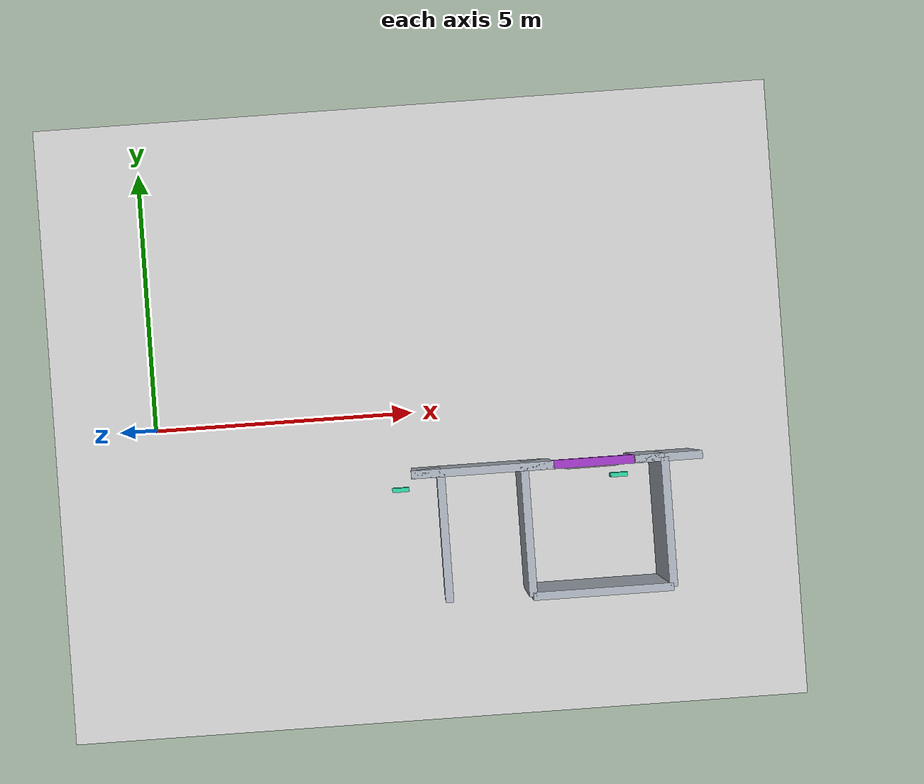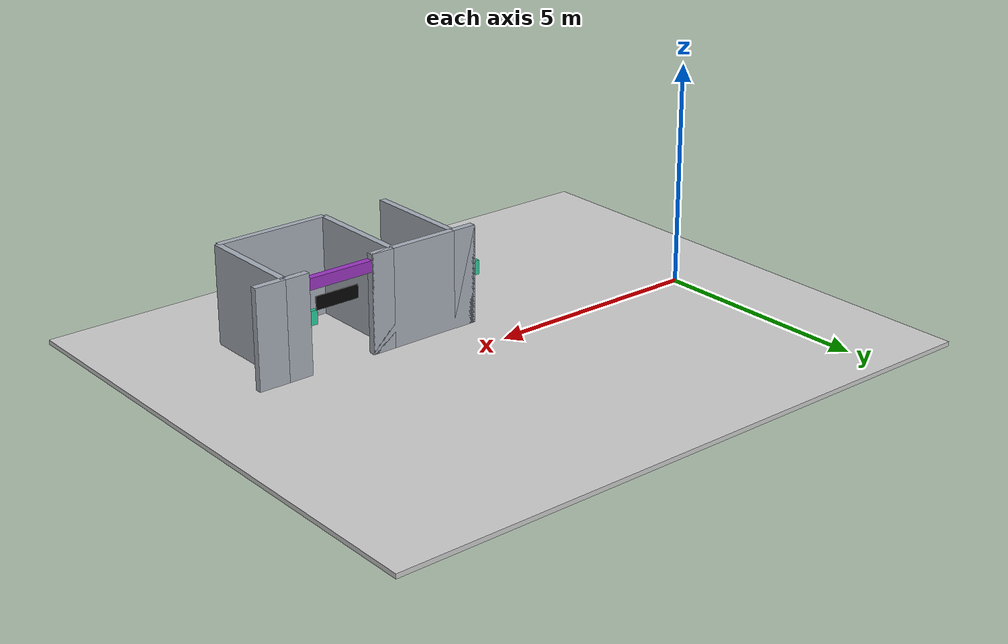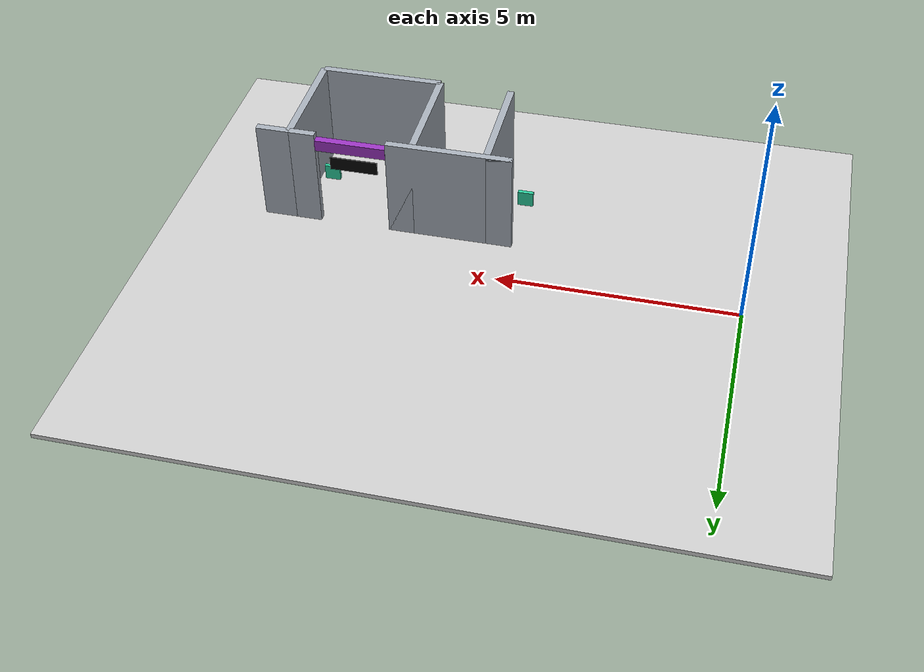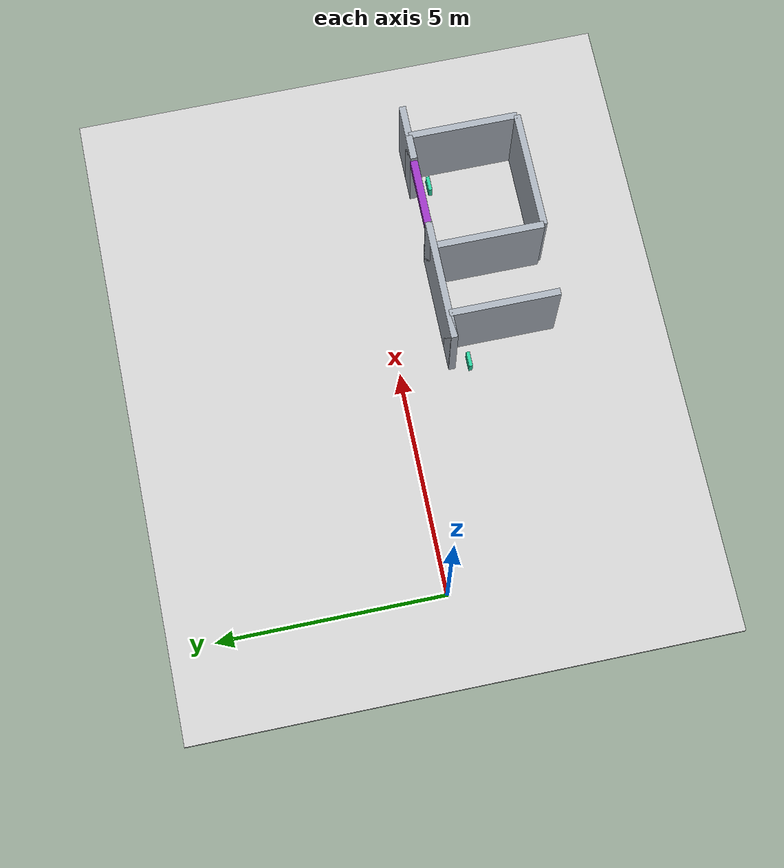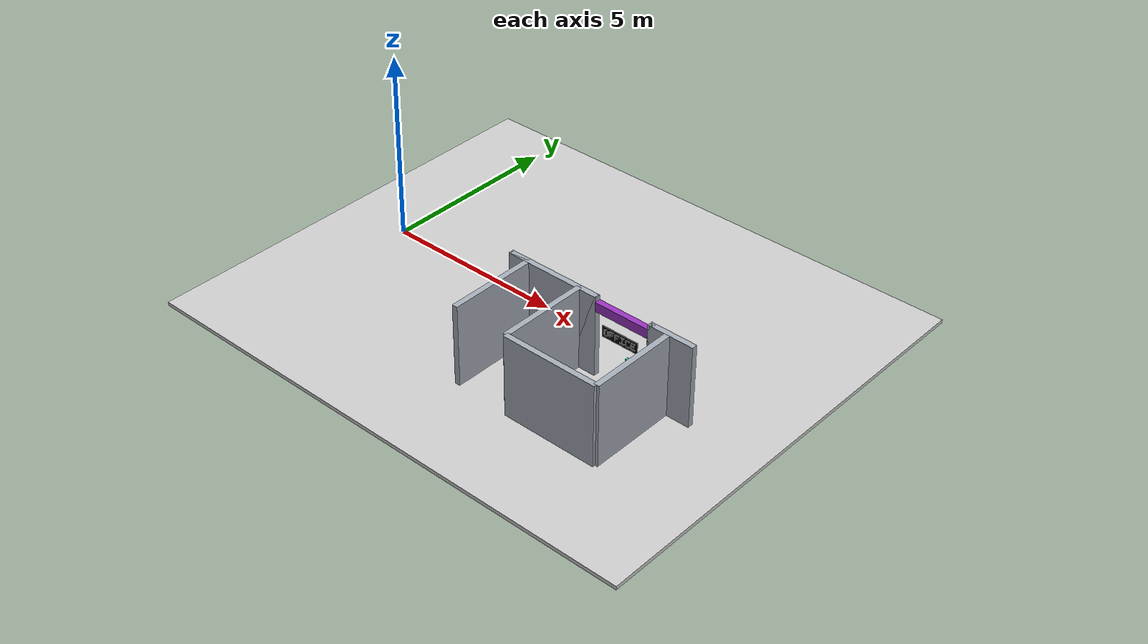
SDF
<sdf version="1.9">
 <world name="default">
  <model name="ground_plane">
   <static>true</static>
   <pose>5.15 0 -0.05 0 0 0</pose>
   <link name="body">
    <collision name="collision"><geometry><box><size>14.3 12 0.1</size></box></geometry></collision>
    <visual name="visual">
     <geometry><box><size>14.3 12 0.1</size></box></geometry>
     <material><ambient>0.8 0.8 0.8 1</ambient><diffuse>0.8 0.8 0.8 1</diffuse></material>
    </visual>
   </link>
  </model>
  <model name="room_-1_1_1">
   <static>true</static>
   <pose>5.45 -2.3499999999999996 1.1 0 0 0</pose>
   <link name="body">
    <collision name="collision"><geometry><box><size>0.15 2.4 2.2</size></box></geometry></collision>
    <visual name="visual">
     <geometry><box><size>0.15 2.4 2.2</size></box></geometry>
     <material><ambient>0.65 0.68 0.72 1</ambient><diffuse>0.65 0.68 0.72 1</diffuse></material>
    </visual>
   </link>
  </model>
  <model name="jamb_-1_1_1">
   <static>true</static>
   <pose>5.175000000000001 -1.15 1.1 0 0 0</pose>
   <link name="body">
    <collision name="collision"><geometry><box><size>0.55 0.15 2.2</size></box></geometry></collision>
    <visual name="visual">
     <geometry><box><size>0.55 0.15 2.2</size></box></geometry>
     <material><ambient>0.65 0.68 0.72 1</ambient><diffuse>0.65 0.68 0.72 1</diffuse></material>
    </visual>
   </link>
  </model>
  <model name="hall_-1_2">
   <static>true</static>
   <pose>6.2250000000000005 -1.15 1.1 0 0 0</pose>
   <link name="body">
    <collision name="collision">
     <geometry><box><size>2.6500000000000004 0.15 2.2</size></box></geometry>
    </collision>
    <visual name="visual">
     <geometry><box><size>2.6500000000000004 0.15 2.2</size></box></geometry>
     <material><ambient>0.65 0.68 0.72 1</ambient><diffuse>0.65 0.68 0.72 1</diffuse></material>
    </visual>
   </link>
  </model>
  <model name="room_-1_2_-1">
   <static>true</static>
   <pose>7.000000000000001 -2.3499999999999996 1.1 0 0 0</pose>
   <link name="body">
    <collision name="collision"><geometry><box><size>0.15 2.4 2.2</size></box></geometry></collision>
    <visual name="visual">
     <geometry><box><size>0.15 2.4 2.2</size></box></geometry>
     <material><ambient>0.65 0.68 0.72 1</ambient><diffuse>0.65 0.68 0.72 1</diffuse></material>
    </visual>
   </link>
  </model>
  <model name="room_-1_2_1">
   <static>true</static>
   <pose>9.600000000000001 -2.3499999999999996 1.1 0 0 0</pose>
   <link name="body">
    <collision name="collision"><geometry><box><size>0.15 2.4 2.2</size></box></geometry></collision>
    <visual name="visual">
     <geometry><box><size>0.15 2.4 2.2</size></box></geometry>
     <material><ambient>0.65 0.68 0.72 1</ambient><diffuse>0.65 0.68 0.72 1</diffuse></material>
    </visual>
   </link>
  </model>
  <model name="room_end_-1_2">
   <static>true</static>
   <pose>8.3 -3.55 1.1 0 0 0</pose>
   <link name="body">
    <collision name="collision"><geometry><box><size>2.6 0.15 2.2</size></box></geometry></collision>
    <visual name="visual">
     <geometry><box><size>2.6 0.15 2.2</size></box></geometry>
     <material><ambient>0.65 0.68 0.72 1</ambient><diffuse>0.65 0.68 0.72 1</diffuse></material>
    </visual>
   </link>
  </model>
  <model name="jamb_-1_2_-1">
   <static>true</static>
   <pose>7.275 -1.15 1.1 0 0 0</pose>
   <link name="body">
    <collision name="collision"><geometry><box><size>0.55 0.15 2.2</size></box></geometry></collision>
    <visual name="visual">
     <geometry><box><size>0.55 0.15 2.2</size></box></geometry>
     <material><ambient>0.65 0.68 0.72 1</ambient><diffuse>0.65 0.68 0.72 1</diffuse></material>
    </visual>
   </link>
  </model>
  <model name="jamb_-1_2_1">
   <static>true</static>
   <pose>9.325000000000001 -1.15 1.1 0 0 0</pose>
   <link name="body">
    <collision name="collision"><geometry><box><size>0.55 0.15 2.2</size></box></geometry></collision>
    <visual name="visual">
     <geometry><box><size>0.55 0.15 2.2</size></box></geometry>
     <material><ambient>0.65 0.68 0.72 1</ambient><diffuse>0.65 0.68 0.72 1</diffuse></material>
    </visual>
   </link>
  </model>
  <model name="hall_end_-1">
   <static>true</static>
   <pose>9.675 -1.15 1.1 0 0 0</pose>
   <link name="body">
    <collision name="collision"><geometry><box><size>1.25 0.15 2.2</size></box></geometry></collision>
    <visual name="visual">
     <geometry><box><size>1.25 0.15 2.2</size></box></geometry>
     <material><ambient>0.65 0.68 0.72 1</ambient><diffuse>0.65 0.68 0.72 1</diffuse></material>
    </visual>
   </link>
  </model>
  <model name="r3geo_base_r009_right_1_entrance_sign">
   <static>true</static>
   <pose>4.680000000000001 -1.45 1.05 0 0 0</pose>
   <link name="body">
    <visual name="visual">
     <geometry><box><size>0.32 0.08 0.32</size></box></geometry>
     <material><ambient>0.16 0.8 0.61 1</ambient><diffuse>0.16 0.8 0.61 1</diffuse></material>
    </visual>
   </link>
  </model>
  <model name="r3geo_base_r009_right_2_lintel">
   <static>true</static>
   <pose>8.3 -1.15 1.95 0 0 0</pose>
   <link name="body">
    <collision name="collision"><geometry><box><size>1.5 0.16 0.25</size></box></geometry></collision>
    <visual name="visual">
     <geometry><box><size>1.5 0.16 0.25</size></box></geometry>
     <material><ambient>0.6 0.2 0.75 1</ambient><diffuse>0.6 0.2 0.75 1</diffuse></material>
    </visual>
   </link>
  </model>
  <model name="r3geo_base_r009_right_2_entrance_sign">
   <static>true</static>
   <pose>8.83 -1.45 1.05 0 0 0</pose>
   <link name="body">
    <visual name="visual">
     <geometry><box><size>0.32 0.08 0.32</size></box></geometry>
     <material><ambient>0.16 0.8 0.61 1</ambient><diffuse>0.16 0.8 0.61 1</diffuse></material>
    </visual>
   </link>
  </model>
  <model name="readable_r3geo_base_r009_right_2_entrance_room">
   <static>true</static>
   <pose>8.3 -1.25 1.43 0 0 0</pose>
   <link name="lettering">
    <visual name="backboard">
     <geometry><box><size>1.02 0.018 0.3</size></box></geometry>
     <material>
      <ambient>.015 .015 .015 1</ambient>
      <diffuse>.015 .015 .015 1</diffuse>
      <emissive>.015 .015 .015 1</emissive>
     </material>
     <cast_shadows>false</cast_shadows>
    </visual>
    <visual name="letter_0_0_1">
     <pose>-0.416 -0.014 0.078 0 0 0</pose>
     <geometry><box><size>0.024439999999999996 0.008 0.024439999999999996</size></box></geometry>
     <material>
      <ambient>.96 .96 .96 1</ambient>
      <diffuse>.96 .96 .96 1</diffuse>
      <emissive>.96 .96 .96 1</emissive>
     </material>
     <cast_shadows>false</cast_shadows>
    </visual>
    <visual name="letter_0_0_2">
     <pose>-0.39 -0.014 0.078 0 0 0</pose>
     <geometry><box><size>0.024439999999999996 0.008 0.024439999999999996</size></box></geometry>
     <material>
      <ambient>.96 .96 .96 1</ambient>
      <diffuse>.96 .96 .96 1</diffuse>
      <emissive>.96 .96 .96 1</emissive>
     </material>
     <cast_shadows>false</cast_shadows>
    </visual>
    <visual name="letter_0_0_3">
     <pose>-0.364 -0.014 0.078 0 0 0</pose>
     <geometry><box><size>0.024439999999999996 0.008 0.024439999999999996</size></box></geometry>
     <material>
      <ambient>.96 .96 .96 1</ambient>
      <diffuse>.96 .96 .96 1</diffuse>
      <emissive>.96 .96 .96 1</emissive>
     </material>
     <cast_shadows>false</cast_shadows>
    </visual>
    <visual name="letter_0_1_0">
     <pose>-0.442 -0.014 0.052 0 0 0</pose>
     <geometry><box><size>0.024439999999999996 0.008 0.024439999999999996</size></box></geometry>
     <material>
      <ambient>.96 .96 .96 1</ambient>
      <diffuse>.96 .96 .96 1</diffuse>
      <emissive>.96 .96 .96 1</emissive>
     </material>
     <cast_shadows>false</cast_shadows>
    </visual>
    <visual name="letter_0_1_4">
     <pose>-0.338 -0.014 0.052 0 0 0</pose>
     <geometry><box><size>0.024439999999999996 0.008 0.024439999999999996</size></box></geometry>
     <material>
      <ambient>.96 .96 .96 1</ambient>
      <diffuse>.96 .96 .96 1</diffuse>
      <emissive>.96 .96 .96 1</emissive>
     </material>
     <cast_shadows>false</cast_shadows>
    </visual>
    <visual name="letter_0_2_0">
     <pose>-0.442 -0.014 0.026 0 0 0</pose>
     <geometry><box><size>0.024439999999999996 0.008 0.024439999999999996</size></box></geometry>
     <material>
      <ambient>.96 .96 .96 1</ambient>
      <diffuse>.96 .96 .96 1</diffuse>
      <emissive>.96 .96 .96 1</emissive>
     </material>
     <cast_shadows>false</cast_shadows>
    </visual>
    <visual name="letter_0_2_4">
     <pose>-0.338 -0.014 0.026 0 0 0</pose>
     <geometry><box><size>0.024439999999999996 0.008 0.024439999999999996</size></box></geometry>
     <material>
      <ambient>.96 .96 .96 1</ambient>
      <diffuse>.96 .96 .96 1</diffuse>
      <emissive>.96 .96 .96 1</emissive>
     </material>
     <cast_shadows>false</cast_shadows>
    </visual>
    <visual name="letter_0_3_0">
     <pose>-0.442 -0.014 0 0 0 0</pose>
     <geometry><box><size>0.024439999999999996 0.008 0.024439999999999996</size></box></geometry>
     <material>
      <ambient>.96 .96 .96 1</ambient>
      <diffuse>.96 .96 .96 1</diffuse>
      <emissive>.96 .96 .96 1</emissive>
     </material>
     <cast_shadows>false</cast_shadows>
    </visual>
    <visual name="letter_0_3_4">
     <pose>-0.338 -0.014 0 0 0 0</pose>
     <geometry><box><size>0.024439999999999996 0.008 0.024439999999999996</size></box></geometry>
     <material>
      <ambient>.96 .96 .96 1</ambient>
      <diffuse>.96 .96 .96 1</diffuse>
      <emissive>.96 .96 .96 1</emissive>
     </material>
     <cast_shadows>false</cast_shadows>
    </visual>
    <visual name="letter_0_4_0">
     <pose>-0.442 -0.014 -0.026 0 0 0</pose>
     <geometry><box><size>0.024439999999999996 0.008 0.024439999999999996</size></box></geometry>
     <material>
      <ambient>.96 .96 .96 1</ambient>
      <diffuse>.96 .96 .96 1</diffuse>
      <emissive>.96 .96 .96 1</emissive>
     </material>
     <cast_shadows>false</cast_shadows>
    </visual>
    <visual name="letter_0_4_4">
     <pose>-0.338 -0.014 -0.026 0 0 0</pose>
     <geometry><box><size>0.024439999999999996 0.008 0.024439999999999996</size></box></geometry>
     <material>
      <ambient>.96 .96 .96 1</ambient>
      <diffuse>.96 .96 .96 1</diffuse>
      <emissive>.96 .96 .96 1</emissive>
     </material>
     <cast_shadows>false</cast_shadows>
    </visual>
    <visual name="letter_0_5_0">
     <pose>-0.442 -0.014 -0.052 0 0 0</pose>
     <geometry><box><size>0.024439999999999996 0.008 0.024439999999999996</size></box></geometry>
     <material>
      <ambient>.96 .96 .96 1</ambient>
      <diffuse>.96 .96 .96 1</diffuse>
      <emissive>.96 .96 .96 1</emissive>
     </material>
     <cast_shadows>false</cast_shadows>
    </visual>
    <visual name="letter_0_5_4">
     <pose>-0.338 -0.014 -0.052 0 0 0</pose>
     <geometry><box><size>0.024439999999999996 0.008 0.024439999999999996</size></box></geometry>
     <material>
      <ambient>.96 .96 .96 1</ambient>
      <diffuse>.96 .96 .96 1</diffuse>
      <emissive>.96 .96 .96 1</emissive>
     </material>
     <cast_shadows>false</cast_shadows>
    </visual>
    <visual name="letter_0_6_1">
     <pose>-0.416 -0.014 -0.078 0 0 0</pose>
     <geometry><box><size>0.024439999999999996 0.008 0.024439999999999996</size></box></geometry>
     <material>
      <ambient>.96 .96 .96 1</ambient>
      <diffuse>.96 .96 .96 1</diffuse>
      <emissive>.96 .96 .96 1</emissive>
     </material>
     <cast_shadows>false</cast_shadows>
    </visual>
    <visual name="letter_0_6_2">
     <pose>-0.39 -0.014 -0.078 0 0 0</pose>
     <geometry><box><size>0.024439999999999996 0.008 0.024439999999999996</size></box></geometry>
     <material>
      <ambient>.96 .96 .96 1</ambient>
      <diffuse>.96 .96 .96 1</diffuse>
      <emissive>.96 .96 .96 1</emissive>
     </material>
     <cast_shadows>false</cast_shadows>
    </visual>
    <visual name="letter_0_6_3">
     <pose>-0.364 -0.014 -0.078 0 0 0</pose>
     <geometry><box><size>0.024439999999999996 0.008 0.024439999999999996</size></box></geometry>
     <material>
      <ambient>.96 .96 .96 1</ambient>
      <diffuse>.96 .96 .96 1</diffuse>
      <emissive>.96 .96 .96 1</emissive>
     </material>
     <cast_shadows>false</cast_shadows>
    </visual>
    <visual name="letter_1_0_0">
     <pose>-0.286 -0.014 0.078 0 0 0</pose>
     <geometry><box><size>0.024439999999999996 0.008 0.024439999999999996</size></box></geometry>
     <material>
      <ambient>.96 .96 .96 1</ambient>
      <diffuse>.96 .96 .96 1</diffuse>
      <emissive>.96 .96 .96 1</emissive>
     </material>
     <cast_shadows>false</cast_shadows>
    </visual>
    <visual name="letter_1_0_1">
     <pose>-0.26 -0.014 0.078 0 0 0</pose>
     <geometry><box><size>0.024439999999999996 0.008 0.024439999999999996</size></box></geometry>
     <material>
      <ambient>.96 .96 .96 1</ambient>
      <diffuse>.96 .96 .96 1</diffuse>
      <emissive>.96 .96 .96 1</emissive>
     </material>
     <cast_shadows>false</cast_shadows>
    </visual>
    <visual name="letter_1_0_2">
     <pose>-0.234 -0.014 0.078 0 0 0</pose>
     <geometry><box><size>0.024439999999999996 0.008 0.024439999999999996</size></box></geometry>
     <material>
      <ambient>.96 .96 .96 1</ambient>
      <diffuse>.96 .96 .96 1</diffuse>
      <emissive>.96 .96 .96 1</emissive>
     </material>
     <cast_shadows>false</cast_shadows>
    </visual>
    <visual name="letter_1_0_3">
     <pose>-0.208 -0.014 0.078 0 0 0</pose>
     <geometry><box><size>0.024439999999999996 0.008 0.024439999999999996</size></box></geometry>
     <material>
      <ambient>.96 .96 .96 1</ambient>
      <diffuse>.96 .96 .96 1</diffuse>
      <emissive>.96 .96 .96 1</emissive>
     </material>
     <cast_shadows>false</cast_shadows>
    </visual>
    <visual name="letter_1_0_4">
     <pose>-0.182 -0.014 0.078 0 0 0</pose>
     <geometry><box><size>0.024439999999999996 0.008 0.024439999999999996</size></box></geometry>
     <material>
      <ambient>.96 .96 .96 1</ambient>
      <diffuse>.96 .96 .96 1</diffuse>
      <emissive>.96 .96 .96 1</emissive>
     </material>
     <cast_shadows>false</cast_shadows>
    </visual>
    <visual name="letter_1_1_0">
     <pose>-0.286 -0.014 0.052 0 0 0</pose>
     <geometry><box><size>0.024439999999999996 0.008 0.024439999999999996</size></box></geometry>
     <material>
      <ambient>.96 .96 .96 1</ambient>
      <diffuse>.96 .96 .96 1</diffuse>
      <emissive>.96 .96 .96 1</emissive>
     </material>
     <cast_shadows>false</cast_shadows>
    </visual>
    <visual name="letter_1_2_0">
     <pose>-0.286 -0.014 0.026 0 0 0</pose>
     <geometry><box><size>0.024439999999999996 0.008 0.024439999999999996</size></box></geometry>
     <material>
      <ambient>.96 .96 .96 1</ambient>
      <diffuse>.96 .96 .96 1</diffuse>
      <emissive>.96 .96 .96 1</emissive>
     </material>
     <cast_shadows>false</cast_shadows>
    </visual>
    <visual name="letter_1_3_0">
     <pose>-0.286 -0.014 0 0 0 0</pose>
     <geometry><box><size>0.024439999999999996 0.008 0.024439999999999996</size></box></geometry>
     <material>
      <ambient>.96 .96 .96 1</ambient>
      <diffuse>.96 .96 .96 1</diffuse>
      <emissive>.96 .96 .96 1</emissive>
     </material>
     <cast_shadows>false</cast_shadows>
    </visual>
    <visual name="letter_1_3_1">
     <pose>-0.26 -0.014 0 0 0 0</pose>
     <geometry><box><size>0.024439999999999996 0.008 0.024439999999999996</size></box></geometry>
     <material>
      <ambient>.96 .96 .96 1</ambient>
      <diffuse>.96 .96 .96 1</diffuse>
      <emissive>.96 .96 .96 1</emissive>
     </material>
     <cast_shadows>false</cast_shadows>
    </visual>
    <visual name="letter_1_3_2">
     <pose>-0.234 -0.014 0 0 0 0</pose>
     <geometry><box><size>0.024439999999999996 0.008 0.024439999999999996</size></box></geometry>
     <material>
      <ambient>.96 .96 .96 1</ambient>
      <diffuse>.96 .96 .96 1</diffuse>
      <emissive>.96 .96 .96 1</emissive>
     </material>
     <cast_shadows>false</cast_shadows>
    </visual>
    <visual name="letter_1_3_3">
     <pose>-0.208 -0.014 0 0 0 0</pose>
     <geometry><box><size>0.024439999999999996 0.008 0.024439999999999996</size></box></geometry>
     <material>
      <ambient>.96 .96 .96 1</ambient>
      <diffuse>.96 .96 .96 1</diffuse>
      <emissive>.96 .96 .96 1</emissive>
     </material>
     <cast_shadows>false</cast_shadows>
    </visual>
    <visual name="letter_1_4_0">
     <pose>-0.286 -0.014 -0.026 0 0 0</pose>
     <geometry><box><size>0.024439999999999996 0.008 0.024439999999999996</size></box></geometry>
     <material>
      <ambient>.96 .96 .96 1</ambient>
      <diffuse>.96 .96 .96 1</diffuse>
      <emissive>.96 .96 .96 1</emissive>
     </material>
     <cast_shadows>false</cast_shadows>
    </visual>
    <visual name="letter_1_5_0">
     <pose>-0.286 -0.014 -0.052 0 0 0</pose>
     <geometry><box><size>0.024439999999999996 0.008 0.024439999999999996</size></box></geometry>
     <material>
      <ambient>.96 .96 .96 1</ambient>
      <diffuse>.96 .96 .96 1</diffuse>
      <emissive>.96 .96 .96 1</emissive>
     </material>
     <cast_shadows>false</cast_shadows>
    </visual>
    <visual name="letter_1_6_0">
     <pose>-0.286 -0.014 -0.078 0 0 0</pose>
     <geometry><box><size>0.024439999999999996 0.008 0.024439999999999996</size></box></geometry>
     <material>
      <ambient>.96 .96 .96 1</ambient>
      <diffuse>.96 .96 .96 1</diffuse>
      <emissive>.96 .96 .96 1</emissive>
     </material>
     <cast_shadows>false</cast_shadows>
    </visual>
    <visual name="letter_2_0_0">
     <pose>-0.13 -0.014 0.078 0 0 0</pose>
     <geometry><box><size>0.024439999999999996 0.008 0.024439999999999996</size></box></geometry>
     <material>
      <ambient>.96 .96 .96 1</ambient>
      <diffuse>.96 .96 .96 1</diffuse>
      <emissive>.96 .96 .96 1</emissive>
     </material>
     <cast_shadows>false</cast_shadows>
    </visual>
    <visual name="letter_2_0_1">
     <pose>-0.104 -0.014 0.078 0 0 0</pose>
     <geometry><box><size>0.024439999999999996 0.008 0.024439999999999996</size></box></geometry>
     <material>
      <ambient>.96 .96 .96 1</ambient>
      <diffuse>.96 .96 .96 1</diffuse>
      <emissive>.96 .96 .96 1</emissive>
     </material>
     <cast_shadows>false</cast_shadows>
    </visual>
    <visual name="letter_2_0_2">
     <pose>-0.078 -0.014 0.078 0 0 0</pose>
     <geometry><box><size>0.024439999999999996 0.008 0.024439999999999996</size></box></geometry>
     <material>
      <ambient>.96 .96 .96 1</ambient>
      <diffuse>.96 .96 .96 1</diffuse>
      <emissive>.96 .96 .96 1</emissive>
     </material>
     <cast_shadows>false</cast_shadows>
    </visual>
    <visual name="letter_2_0_3">
     <pose>-0.052 -0.014 0.078 0 0 0</pose>
     <geometry><box><size>0.024439999999999996 0.008 0.024439999999999996</size></box></geometry>
     <material>
      <ambient>.96 .96 .96 1</ambient>
      <diffuse>.96 .96 .96 1</diffuse>
      <emissive>.96 .96 .96 1</emissive>
     </material>
     <cast_shadows>false</cast_shadows>
    </visual>
    <visual name="letter_2_0_4">
     <pose>-0.026 -0.014 0.078 0 0 0</pose>
     <geometry><box><size>0.024439999999999996 0.008 0.024439999999999996</size></box></geometry>
     <material>
      <ambient>.96 .96 .96 1</ambient>
      <diffuse>.96 .96 .96 1</diffuse>
      <emissive>.96 .96 .96 1</emissive>
     </material>
     <cast_shadows>false</cast_shadows>
    </visual>
    <visual name="letter_2_1_0">
     <pose>-0.13 -0.014 0.052 0 0 0</pose>
     <geometry><box><size>0.024439999999999996 0.008 0.024439999999999996</size></box></geometry>
     <material>
      <ambient>.96 .96 .96 1</ambient>
      <diffuse>.96 .96 .96 1</diffuse>
      <emissive>.96 .96 .96 1</emissive>
     </material>
     <cast_shadows>false</cast_shadows>
    </visual>
    <visual name="letter_2_2_0">
     <pose>-0.13 -0.014 0.026 0 0 0</pose>
     <geometry><box><size>0.024439999999999996 0.008 0.024439999999999996</size></box></geometry>
     <material>
      <ambient>.96 .96 .96 1</ambient>
      <diffuse>.96 .96 .96 1</diffuse>
      <emissive>.96 .96 .96 1</emissive>
     </material>
     <cast_shadows>false</cast_shadows>
    </visual>
    <visual name="letter_2_3_0">
     <pose>-0.13 -0.014 0 0 0 0</pose>
     <geometry><box><size>0.024439999999999996 0.008 0.024439999999999996</size></box></geometry>
     <material>
      <ambient>.96 .96 .96 1</ambient>
      <diffuse>.96 .96 .96 1</diffuse>
      <emissive>.96 .96 .96 1</emissive>
     </material>
     <cast_shadows>false</cast_shadows>
    </visual>
    <visual name="letter_2_3_1">
     <pose>-0.104 -0.014 0 0 0 0</pose>
     <geometry><box><size>0.024439999999999996 0.008 0.024439999999999996</size></box></geometry>
     <material>
      <ambient>.96 .96 .96 1</ambient>
      <diffuse>.96 .96 .96 1</diffuse>
      <emissive>.96 .96 .96 1</emissive>
     </material>
     <cast_shadows>false</cast_shadows>
    </visual>
    <visual name="letter_2_3_2">
     <pose>-0.078 -0.014 0 0 0 0</pose>
     <geometry><box><size>0.024439999999999996 0.008 0.024439999999999996</size></box></geometry>
     <material>
      <ambient>.96 .96 .96 1</ambient>
      <diffuse>.96 .96 .96 1</diffuse>
      <emissive>.96 .96 .96 1</emissive>
     </material>
     <cast_shadows>false</cast_shadows>
    </visual>
    <visual name="letter_2_3_3">
     <pose>-0.052 -0.014 0 0 0 0</pose>
     <geometry><box><size>0.024439999999999996 0.008 0.024439999999999996</size></box></geometry>
     <material>
      <ambient>.96 .96 .96 1</ambient>
      <diffuse>.96 .96 .96 1</diffuse>
      <emissive>.96 .96 .96 1</emissive>
     </material>
     <cast_shadows>false</cast_shadows>
    </visual>
    <visual name="letter_2_4_0">
     <pose>-0.13 -0.014 -0.026 0 0 0</pose>
     <geometry><box><size>0.024439999999999996 0.008 0.024439999999999996</size></box></geometry>
     <material>
      <ambient>.96 .96 .96 1</ambient>
      <diffuse>.96 .96 .96 1</diffuse>
      <emissive>.96 .96 .96 1</emissive>
     </material>
     <cast_shadows>false</cast_shadows>
    </visual>
    <visual name="letter_2_5_0">
     <pose>-0.13 -0.014 -0.052 0 0 0</pose>
     <geometry><box><size>0.024439999999999996 0.008 0.024439999999999996</size></box></geometry>
     <material>
      <ambient>.96 .96 .96 1</ambient>
      <diffuse>.96 .96 .96 1</diffuse>
      <emissive>.96 .96 .96 1</emissive>
     </material>
     <cast_shadows>false</cast_shadows>
    </visual>
    <visual name="letter_2_6_0">
     <pose>-0.13 -0.014 -0.078 0 0 0</pose>
     <geometry><box><size>0.024439999999999996 0.008 0.024439999999999996</size></box></geometry>
     <material>
      <ambient>.96 .96 .96 1</ambient>
      <diffuse>.96 .96 .96 1</diffuse>
      <emissive>.96 .96 .96 1</emissive>
     </material>
     <cast_shadows>false</cast_shadows>
    </visual>
    <visual name="letter_3_0_0">
     <pose>0.026 -0.014 0.078 0 0 0</pose>
     <geometry><box><size>0.024439999999999996 0.008 0.024439999999999996</size></box></geometry>
     <material>
      <ambient>.96 .96 .96 1</ambient>
      <diffuse>.96 .96 .96 1</diffuse>
      <emissive>.96 .96 .96 1</emissive>
     </material>
     <cast_shadows>false</cast_shadows>
    </visual>
    <visual name="letter_3_0_1">
     <pose>0.052 -0.014 0.078 0 0 0</pose>
     <geometry><box><size>0.024439999999999996 0.008 0.024439999999999996</size></box></geometry>
     <material>
      <ambient>.96 .96 .96 1</ambient>
      <diffuse>.96 .96 .96 1</diffuse>
      <emissive>.96 .96 .96 1</emissive>
     </material>
     <cast_shadows>false</cast_shadows>
    </visual>
    <visual name="letter_3_0_2">
     <pose>0.078 -0.014 0.078 0 0 0</pose>
     <geometry><box><size>0.024439999999999996 0.008 0.024439999999999996</size></box></geometry>
     <material>
      <ambient>.96 .96 .96 1</ambient>
      <diffuse>.96 .96 .96 1</diffuse>
      <emissive>.96 .96 .96 1</emissive>
     </material>
     <cast_shadows>false</cast_shadows>
    </visual>
    <visual name="letter_3_0_3">
     <pose>0.104 -0.014 0.078 0 0 0</pose>
     <geometry><box><size>0.024439999999999996 0.008 0.024439999999999996</size></box></geometry>
     <material>
      <ambient>.96 .96 .96 1</ambient>
      <diffuse>.96 .96 .96 1</diffuse>
      <emissive>.96 .96 .96 1</emissive>
     </material>
     <cast_shadows>false</cast_shadows>
    </visual>
    <visual name="letter_3_0_4">
     <pose>0.13 -0.014 0.078 0 0 0</pose>
     <geometry><box><size>0.024439999999999996 0.008 0.024439999999999996</size></box></geometry>
     <material>
      <ambient>.96 .96 .96 1</ambient>
      <diffuse>.96 .96 .96 1</diffuse>
      <emissive>.96 .96 .96 1</emissive>
     </material>
     <cast_shadows>false</cast_shadows>
    </visual>
    <visual name="letter_3_1_2">
     <pose>0.078 -0.014 0.052 0 0 0</pose>
     <geometry><box><size>0.024439999999999996 0.008 0.024439999999999996</size></box></geometry>
     <material>
      <ambient>.96 .96 .96 1</ambient>
      <diffuse>.96 .96 .96 1</diffuse>
      <emissive>.96 .96 .96 1</emissive>
     </material>
     <cast_shadows>false</cast_shadows>
    </visual>
    <visual name="letter_3_2_2">
     <pose>0.078 -0.014 0.026 0 0 0</pose>
     <geometry><box><size>0.024439999999999996 0.008 0.024439999999999996</size></box></geometry>
     <material>
      <ambient>.96 .96 .96 1</ambient>
      <diffuse>.96 .96 .96 1</diffuse>
      <emissive>.96 .96 .96 1</emissive>
     </material>
     <cast_shadows>false</cast_shadows>
    </visual>
    <visual name="letter_3_3_2">
     <pose>0.078 -0.014 0 0 0 0</pose>
     <geometry><box><size>0.024439999999999996 0.008 0.024439999999999996</size></box></geometry>
     <material>
      <ambient>.96 .96 .96 1</ambient>
      <diffuse>.96 .96 .96 1</diffuse>
      <emissive>.96 .96 .96 1</emissive>
     </material>
     <cast_shadows>false</cast_shadows>
    </visual>
    <visual name="letter_3_4_2">
     <pose>0.078 -0.014 -0.026 0 0 0</pose>
     <geometry><box><size>0.024439999999999996 0.008 0.024439999999999996</size></box></geometry>
     <material>
      <ambient>.96 .96 .96 1</ambient>
      <diffuse>.96 .96 .96 1</diffuse>
      <emissive>.96 .96 .96 1</emissive>
     </material>
     <cast_shadows>false</cast_shadows>
    </visual>
    <visual name="letter_3_5_2">
     <pose>0.078 -0.014 -0.052 0 0 0</pose>
     <geometry><box><size>0.024439999999999996 0.008 0.024439999999999996</size></box></geometry>
     <material>
      <ambient>.96 .96 .96 1</ambient>
      <diffuse>.96 .96 .96 1</diffuse>
      <emissive>.96 .96 .96 1</emissive>
     </material>
     <cast_shadows>false</cast_shadows>
    </visual>
    <visual name="letter_3_6_0">
     <pose>0.026 -0.014 -0.078 0 0 0</pose>
     <geometry><box><size>0.024439999999999996 0.008 0.024439999999999996</size></box></geometry>
     <material>
      <ambient>.96 .96 .96 1</ambient>
      <diffuse>.96 .96 .96 1</diffuse>
      <emissive>.96 .96 .96 1</emissive>
     </material>
     <cast_shadows>false</cast_shadows>
    </visual>
    <visual name="letter_3_6_1">
     <pose>0.052 -0.014 -0.078 0 0 0</pose>
     <geometry><box><size>0.024439999999999996 0.008 0.024439999999999996</size></box></geometry>
     <material>
      <ambient>.96 .96 .96 1</ambient>
      <diffuse>.96 .96 .96 1</diffuse>
      <emissive>.96 .96 .96 1</emissive>
     </material>
     <cast_shadows>false</cast_shadows>
    </visual>
    <visual name="letter_3_6_2">
     <pose>0.078 -0.014 -0.078 0 0 0</pose>
     <geometry><box><size>0.024439999999999996 0.008 0.024439999999999996</size></box></geometry>
     <material>
      <ambient>.96 .96 .96 1</ambient>
      <diffuse>.96 .96 .96 1</diffuse>
      <emissive>.96 .96 .96 1</emissive>
     </material>
     <cast_shadows>false</cast_shadows>
    </visual>
    <visual name="letter_3_6_3">
     <pose>0.104 -0.014 -0.078 0 0 0</pose>
     <geometry><box><size>0.024439999999999996 0.008 0.024439999999999996</size></box></geometry>
     <material>
      <ambient>.96 .96 .96 1</ambient>
      <diffuse>.96 .96 .96 1</diffuse>
      <emissive>.96 .96 .96 1</emissive>
     </material>
     <cast_shadows>false</cast_shadows>
    </visual>
    <visual name="letter_3_6_4">
     <pose>0.13 -0.014 -0.078 0 0 0</pose>
     <geometry><box><size>0.024439999999999996 0.008 0.024439999999999996</size></box></geometry>
     <material>
      <ambient>.96 .96 .96 1</ambient>
      <diffuse>.96 .96 .96 1</diffuse>
      <emissive>.96 .96 .96 1</emissive>
     </material>
     <cast_shadows>false</cast_shadows>
    </visual>
    <visual name="letter_4_0_1">
     <pose>0.208 -0.014 0.078 0 0 0</pose>
     <geometry><box><size>0.024439999999999996 0.008 0.024439999999999996</size></box></geometry>
     <material>
      <ambient>.96 .96 .96 1</ambient>
      <diffuse>.96 .96 .96 1</diffuse>
      <emissive>.96 .96 .96 1</emissive>
     </material>
     <cast_shadows>false</cast_shadows>
    </visual>
    <visual name="letter_4_0_2">
     <pose>0.234 -0.014 0.078 0 0 0</pose>
     <geometry><box><size>0.024439999999999996 0.008 0.024439999999999996</size></box></geometry>
     <material>
      <ambient>.96 .96 .96 1</ambient>
      <diffuse>.96 .96 .96 1</diffuse>
      <emissive>.96 .96 .96 1</emissive>
     </material>
     <cast_shadows>false</cast_shadows>
    </visual>
    <visual name="letter_4_0_3">
     <pose>0.26 -0.014 0.078 0 0 0</pose>
     <geometry><box><size>0.024439999999999996 0.008 0.024439999999999996</size></box></geometry>
     <material>
      <ambient>.96 .96 .96 1</ambient>
      <diffuse>.96 .96 .96 1</diffuse>
      <emissive>.96 .96 .96 1</emissive>
     </material>
     <cast_shadows>false</cast_shadows>
    </visual>
    <visual name="letter_4_0_4">
     <pose>0.286 -0.014 0.078 0 0 0</pose>
     <geometry><box><size>0.024439999999999996 0.008 0.024439999999999996</size></box></geometry>
     <material>
      <ambient>.96 .96 .96 1</ambient>
      <diffuse>.96 .96 .96 1</diffuse>
      <emissive>.96 .96 .96 1</emissive>
     </material>
     <cast_shadows>false</cast_shadows>
    </visual>
    <visual name="letter_4_1_0">
     <pose>0.182 -0.014 0.052 0 0 0</pose>
     <geometry><box><size>0.024439999999999996 0.008 0.024439999999999996</size></box></geometry>
     <material>
      <ambient>.96 .96 .96 1</ambient>
      <diffuse>.96 .96 .96 1</diffuse>
      <emissive>.96 .96 .96 1</emissive>
     </material>
     <cast_shadows>false</cast_shadows>
    </visual>
    <visual name="letter_4_2_0">
     <pose>0.182 -0.014 0.026 0 0 0</pose>
     <geometry><box><size>0.024439999999999996 0.008 0.024439999999999996</size></box></geometry>
     <material>
      <ambient>.96 .96 .96 1</ambient>
      <diffuse>.96 .96 .96 1</diffuse>
      <emissive>.96 .96 .96 1</emissive>
     </material>
     <cast_shadows>false</cast_shadows>
    </visual>
    <visual name="letter_4_3_0">
     <pose>0.182 -0.014 0 0 0 0</pose>
     <geometry><box><size>0.024439999999999996 0.008 0.024439999999999996</size></box></geometry>
     <material>
      <ambient>.96 .96 .96 1</ambient>
      <diffuse>.96 .96 .96 1</diffuse>
      <emissive>.96 .96 .96 1</emissive>
     </material>
     <cast_shadows>false</cast_shadows>
    </visual>
    <visual name="letter_4_4_0">
     <pose>0.182 -0.014 -0.026 0 0 0</pose>
     <geometry><box><size>0.024439999999999996 0.008 0.024439999999999996</size></box></geometry>
     <material>
      <ambient>.96 .96 .96 1</ambient>
      <diffuse>.96 .96 .96 1</diffuse>
      <emissive>.96 .96 .96 1</emissive>
     </material>
     <cast_shadows>false</cast_shadows>
    </visual>
    <visual name="letter_4_5_0">
     <pose>0.182 -0.014 -0.052 0 0 0</pose>
     <geometry><box><size>0.024439999999999996 0.008 0.024439999999999996</size></box></geometry>
     <material>
      <ambient>.96 .96 .96 1</ambient>
      <diffuse>.96 .96 .96 1</diffuse>
      <emissive>.96 .96 .96 1</emissive>
     </material>
     <cast_shadows>false</cast_shadows>
    </visual>
    <visual name="letter_4_6_1">
     <pose>0.208 -0.014 -0.078 0 0 0</pose>
     <geometry><box><size>0.024439999999999996 0.008 0.024439999999999996</size></box></geometry>
     <material>
      <ambient>.96 .96 .96 1</ambient>
      <diffuse>.96 .96 .96 1</diffuse>
      <emissive>.96 .96 .96 1</emissive>
     </material>
     <cast_shadows>false</cast_shadows>
    </visual>
    <visual name="letter_4_6_2">
     <pose>0.234 -0.014 -0.078 0 0 0</pose>
     <geometry><box><size>0.024439999999999996 0.008 0.024439999999999996</size></box></geometry>
     <material>
      <ambient>.96 .96 .96 1</ambient>
      <diffuse>.96 .96 .96 1</diffuse>
      <emissive>.96 .96 .96 1</emissive>
     </material>
     <cast_shadows>false</cast_shadows>
    </visual>
    <visual name="letter_4_6_3">
     <pose>0.26 -0.014 -0.078 0 0 0</pose>
     <geometry><box><size>0.024439999999999996 0.008 0.024439999999999996</size></box></geometry>
     <material>
      <ambient>.96 .96 .96 1</ambient>
      <diffuse>.96 .96 .96 1</diffuse>
      <emissive>.96 .96 .96 1</emissive>
     </material>
     <cast_shadows>false</cast_shadows>
    </visual>
    <visual name="letter_4_6_4">
     <pose>0.286 -0.014 -0.078 0 0 0</pose>
     <geometry><box><size>0.024439999999999996 0.008 0.024439999999999996</size></box></geometry>
     <material>
      <ambient>.96 .96 .96 1</ambient>
      <diffuse>.96 .96 .96 1</diffuse>
      <emissive>.96 .96 .96 1</emissive>
     </material>
     <cast_shadows>false</cast_shadows>
    </visual>
    <visual name="letter_5_0_0">
     <pose>0.338 -0.014 0.078 0 0 0</pose>
     <geometry><box><size>0.024439999999999996 0.008 0.024439999999999996</size></box></geometry>
     <material>
      <ambient>.96 .96 .96 1</ambient>
      <diffuse>.96 .96 .96 1</diffuse>
      <emissive>.96 .96 .96 1</emissive>
     </material>
     <cast_shadows>false</cast_shadows>
    </visual>
    <visual name="letter_5_0_1">
     <pose>0.364 -0.014 0.078 0 0 0</pose>
     <geometry><box><size>0.024439999999999996 0.008 0.024439999999999996</size></box></geometry>
     <material>
      <ambient>.96 .96 .96 1</ambient>
      <diffuse>.96 .96 .96 1</diffuse>
      <emissive>.96 .96 .96 1</emissive>
     </material>
     <cast_shadows>false</cast_shadows>
    </visual>
    <visual name="letter_5_0_2">
     <pose>0.39 -0.014 0.078 0 0 0</pose>
     <geometry><box><size>0.024439999999999996 0.008 0.024439999999999996</size></box></geometry>
     <material>
      <ambient>.96 .96 .96 1</ambient>
      <diffuse>.96 .96 .96 1</diffuse>
      <emissive>.96 .96 .96 1</emissive>
     </material>
     <cast_shadows>false</cast_shadows>
    </visual>
    <visual name="letter_5_0_3">
     <pose>0.416 -0.014 0.078 0 0 0</pose>
     <geometry><box><size>0.024439999999999996 0.008 0.024439999999999996</size></box></geometry>
     <material>
      <ambient>.96 .96 .96 1</ambient>
      <diffuse>.96 .96 .96 1</diffuse>
      <emissive>.96 .96 .96 1</emissive>
     </material>
     <cast_shadows>false</cast_shadows>
    </visual>
    <visual name="letter_5_0_4">
     <pose>0.442 -0.014 0.078 0 0 0</pose>
     <geometry><box><size>0.024439999999999996 0.008 0.024439999999999996</size></box></geometry>
     <material>
      <ambient>.96 .96 .96 1</ambient>
      <diffuse>.96 .96 .96 1</diffuse>
      <emissive>.96 .96 .96 1</emissive>
     </material>
     <cast_shadows>false</cast_shadows>
    </visual>
    <visual name="letter_5_1_0">
     <pose>0.338 -0.014 0.052 0 0 0</pose>
     <geometry><box><size>0.024439999999999996 0.008 0.024439999999999996</size></box></geometry>
     <material>
      <ambient>.96 .96 .96 1</ambient>
      <diffuse>.96 .96 .96 1</diffuse>
      <emissive>.96 .96 .96 1</emissive>
     </material>
     <cast_shadows>false</cast_shadows>
    </visual>
    <visual name="letter_5_2_0">
     <pose>0.338 -0.014 0.026 0 0 0</pose>
     <geometry><box><size>0.024439999999999996 0.008 0.024439999999999996</size></box></geometry>
     <material>
      <ambient>.96 .96 .96 1</ambient>
      <diffuse>.96 .96 .96 1</diffuse>
      <emissive>.96 .96 .96 1</emissive>
     </material>
     <cast_shadows>false</cast_shadows>
    </visual>
    <visual name="letter_5_3_0">
     <pose>0.338 -0.014 0 0 0 0</pose>
     <geometry><box><size>0.024439999999999996 0.008 0.024439999999999996</size></box></geometry>
     <material>
      <ambient>.96 .96 .96 1</ambient>
      <diffuse>.96 .96 .96 1</diffuse>
      <emissive>.96 .96 .96 1</emissive>
     </material>
     <cast_shadows>false</cast_shadows>
    </visual>
    <visual name="letter_5_3_1">
     <pose>0.364 -0.014 0 0 0 0</pose>
     <geometry><box><size>0.024439999999999996 0.008 0.024439999999999996</size></box></geometry>
     <material>
      <ambient>.96 .96 .96 1</ambient>
      <diffuse>.96 .96 .96 1</diffuse>
      <emissive>.96 .96 .96 1</emissive>
     </material>
     <cast_shadows>false</cast_shadows>
    </visual>
    <visual name="letter_5_3_2">
     <pose>0.39 -0.014 0 0 0 0</pose>
     <geometry><box><size>0.024439999999999996 0.008 0.024439999999999996</size></box></geometry>
     <material>
      <ambient>.96 .96 .96 1</ambient>
      <diffuse>.96 .96 .96 1</diffuse>
      <emissive>.96 .96 .96 1</emissive>
     </material>
     <cast_shadows>false</cast_shadows>
    </visual>
    <visual name="letter_5_3_3">
     <pose>0.416 -0.014 0 0 0 0</pose>
     <geometry><box><size>0.024439999999999996 0.008 0.024439999999999996</size></box></geometry>
     <material>
      <ambient>.96 .96 .96 1</ambient>
      <diffuse>.96 .96 .96 1</diffuse>
      <emissive>.96 .96 .96 1</emissive>
     </material>
     <cast_shadows>false</cast_shadows>
    </visual>
    <visual name="letter_5_4_0">
     <pose>0.338 -0.014 -0.026 0 0 0</pose>
     <geometry><box><size>0.024439999999999996 0.008 0.024439999999999996</size></box></geometry>
     <material>
      <ambient>.96 .96 .96 1</ambient>
      <diffuse>.96 .96 .96 1</diffuse>
      <emissive>.96 .96 .96 1</emissive>
     </material>
     <cast_shadows>false</cast_shadows>
    </visual>
    <visual name="letter_5_5_0">
     <pose>0.338 -0.014 -0.052 0 0 0</pose>
     <geometry><box><size>0.024439999999999996 0.008 0.024439999999999996</size></box></geometry>
     <material>
      <ambient>.96 .96 .96 1</ambient>
      <diffuse>.96 .96 .96 1</diffuse>
      <emissive>.96 .96 .96 1</emissive>
     </material>
     <cast_shadows>false</cast_shadows>
    </visual>
    <visual name="letter_5_6_0">
     <pose>0.338 -0.014 -0.078 0 0 0</pose>
     <geometry><box><size>0.024439999999999996 0.008 0.024439999999999996</size></box></geometry>
     <material>
      <ambient>.96 .96 .96 1</ambient>
      <diffuse>.96 .96 .96 1</diffuse>
      <emissive>.96 .96 .96 1</emissive>
     </material>
     <cast_shadows>false</cast_shadows>
    </visual>
    <visual name="letter_5_6_1">
     <pose>0.364 -0.014 -0.078 0 0 0</pose>
     <geometry><box><size>0.024439999999999996 0.008 0.024439999999999996</size></box></geometry>
     <material>
      <ambient>.96 .96 .96 1</ambient>
      <diffuse>.96 .96 .96 1</diffuse>
      <emissive>.96 .96 .96 1</emissive>
     </material>
     <cast_shadows>false</cast_shadows>
    </visual>
    <visual name="letter_5_6_2">
     <pose>0.39 -0.014 -0.078 0 0 0</pose>
     <geometry><box><size>0.024439999999999996 0.008 0.024439999999999996</size></box></geometry>
     <material>
      <ambient>.96 .96 .96 1</ambient>
      <diffuse>.96 .96 .96 1</diffuse>
      <emissive>.96 .96 .96 1</emissive>
     </material>
     <cast_shadows>false</cast_shadows>
    </visual>
    <visual name="letter_5_6_3">
     <pose>0.416 -0.014 -0.078 0 0 0</pose>
     <geometry><box><size>0.024439999999999996 0.008 0.024439999999999996</size></box></geometry>
     <material>
      <ambient>.96 .96 .96 1</ambient>
      <diffuse>.96 .96 .96 1</diffuse>
      <emissive>.96 .96 .96 1</emissive>
     </material>
     <cast_shadows>false</cast_shadows>
    </visual>
    <visual name="letter_5_6_4">
     <pose>0.442 -0.014 -0.078 0 0 0</pose>
     <geometry><box><size>0.024439999999999996 0.008 0.024439999999999996</size></box></geometry>
     <material>
      <ambient>.96 .96 .96 1</ambient>
      <diffuse>.96 .96 .96 1</diffuse>
      <emissive>.96 .96 .96 1</emissive>
     </material>
     <cast_shadows>false</cast_shadows>
    </visual>
   </link>
  </model>
 </world>
</sdf>
